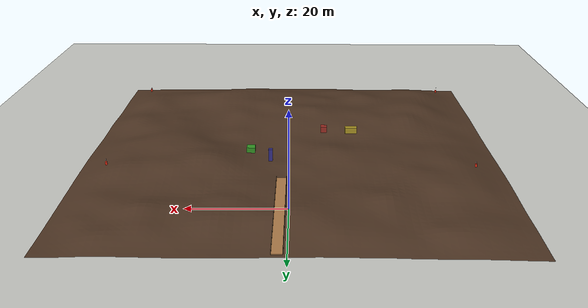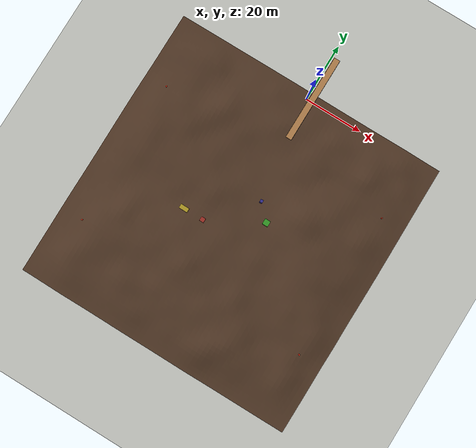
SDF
<sdf version="1.6">
 <world name="level5">
  <plugin filename="gz-sim-physics-system" name="gz::sim::systems::Physics"/>
  <plugin filename="gz-sim-sensors-system" name="gz::sim::systems::Sensors">
   <render_engine>ogre2</render_engine>
   <background_color>0.8 0.8 0.8</background_color>
  </plugin>
  <plugin filename="gz-sim-scene-broadcaster-system" name="gz::sim::systems::SceneBroadcaster"/>
  <plugin filename="gz-sim-user-commands-system" name="gz::sim::systems::UserCommands"/>
  <plugin filename="gz-sim-imu-system" name="gz::sim::systems::Imu"/>
  <plugin filename="gz-sim-navsat-system" name="gz::sim::systems::NavSat"/>
  <spherical_coordinates>
   <surface_model>EARTH_WGS84</surface_model>
   <world_frame_orientation>ENU</world_frame_orientation>
   <latitude_deg>40.595009</latitude_deg>
   <longitude_deg>-79.99974</longitude_deg>
   <elevation>0</elevation>
   <heading_deg>180</heading_deg>
  </spherical_coordinates>
  <scene><ambient>1.0 1.0 1.0</ambient><background>0.8 0.8 0.8</background></scene>
  <light type="directional" name="sun">
   <pose>0 0 10 0 0 0</pose>
   <diffuse>0.8 0.8 0.8 1</diffuse>
   <specular>0.6 0.6 0.6 1</specular>
   <direction>-0.5 0.1 -0.9</direction>
  </light>
  <include><uri>model://no_waves</uri></include>
  <include><uri>model://ocean_floor</uri><pose>00 -45 -8 0 0 0</pose></include>
  <include><uri>model://dock</uri><name>dock_1</name><pose>1.8 1.2 -.1 0 0 -1.5708</pose></include>
  <include><uri>model://buoy_marker</uri><name>buoy_1</name><pose>-40 -70 0 0 0 0</pose></include>
  <include><uri>model://buoy_marker</uri><name>buoy_2</name><pose>-40 -20 0 0 0 0</pose></include>
  <include><uri>model://buoy_marker</uri><name>buoy_3</name><pose>40 -70 0 0 0 0</pose></include>
  <include><uri>model://buoy_marker</uri><name>buoy_4</name><pose>40 -20 0 0 0 0</pose></include>
  <model name="test_cube_1">
   <static>true</static>
   <pose>-8 -50 -3.2 0 0 0</pose>
   <link name="link">
    <collision name="collision"><geometry><box><size>1.5 1.5 1.5</size></box></geometry></collision>
    <visual name="visual">
     <geometry><box><size>1.5 1.5 1.5</size></box></geometry>
     <material><ambient>0.8 0.2 0.2 1</ambient><diffuse>0.8 0.2 0.2 1</diffuse></material>
    </visual>
   </link>
  </model>
  <model name="test_cube_2">
   <static>true</static>
   <pose>10 -40 -5 0 0 0</pose>
   <link name="link">
    <collision name="collision"><geometry><box><size>2.0 2.0 2.0</size></box></geometry></collision>
    <visual name="visual">
     <geometry><box><size>2.0 2.0 2.0</size></box></geometry>
     <material><ambient>0.2 0.8 0.2 1</ambient><diffuse>0.2 0.8 0.2 1</diffuse></material>
    </visual>
   </link>
  </model>
  <model name="test_cube_3">
   <static>true</static>
   <pose>5 -35 -4 0 0 0</pose>
   <link name="link">
    <collision name="collision"><geometry><box><size>1.0 1.0 3.0</size></box></geometry></collision>
    <visual name="visual">
     <geometry><box><size>1.0 1.0 3.0</size></box></geometry>
     <material><ambient>0.2 0.2 0.8 1</ambient><diffuse>0.2 0.2 0.8 1</diffuse></material>
    </visual>
   </link>
  </model>
  <model name="test_cube_4">
   <static>true</static>
   <pose>-15 -50 -3.5 0 0 0</pose>
   <link name="link">
    <collision name="collision"><geometry><box><size>3.0 1.5 1.5</size></box></geometry></collision>
    <visual name="visual">
     <geometry><box><size>3.0 1.5 1.5</size></box></geometry>
     <material><ambient>0.9 0.8 0.2 1</ambient><diffuse>0.9 0.8 0.2 1</diffuse></material>
    </visual>
   </link>
  </model>
 </world>
</sdf>

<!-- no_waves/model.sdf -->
<sdf version="1.6">
  <model name="waves">
    <static>true</static>

    <plugin
        filename="gz-waves1-waves-model-system"
        name="gz::sim::systems::WavesModel">
      <static>1</static>
      <wave>
        <algorithm>sinusoid</algorithm>
        <tile_size>400</tile_size>
        <cell_count>8</cell_count>
        <amplitude>0</amplitude>
        <period>1</period>
      </wave>
    </plugin>

    <link name="base_link">
      <!--
        Static visual water replaces the dynamic WavesVisual deformation
        pipeline. It preserves the visible water surface without per-frame
        mesh updates.
      -->
      <visual name="visual">
        <cast_shadows>false</cast_shadows>
        <transparency>0</transparency>
        <geometry>
          <plane>
            <normal>0 0 1</normal>
            <size>800 800</size>
          </plane>
        </geometry>
        <material>
          <ambient>0.12 0.08 0.02 1</ambient>
          <diffuse>0.25 0.18 0.06 1</diffuse>
          <specular>0.15 0.12 0.08 1</specular>
          <pbr>
            <metal>
              <albedo_map>materials/water.jpg</albedo_map>
              <normal_map>materials/wave_normals.dds</normal_map>
              <environment_map>materials/skybox_lowres.dds</environment_map>
              <roughness>0.3</roughness>
              <metalness>0.1</metalness>
            </metal>
          </pbr>
        </material>
      </visual>
    </link>
  </model>
</sdf>

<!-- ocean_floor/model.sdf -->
<sdf version="1.9">
  <model name="ocean_floor">

    <static>true</static>

    <!-- Original floor -->
    <link name="terrain_link">

      <visual name="terrain_visual">
        <cast_shadows>false</cast_shadows>
        <geometry>
          <mesh>
            <uri>model://ocean_floor/meshes/ocean_floor.obj</uri>
          </mesh>
        </geometry>
        <material>
            <ambient>0.8 0.2 0.2 1</ambient>
            <diffuse>0.360 0.250 0.200 1</diffuse>
        </material>
      </visual>
    </link>
  </model>
</sdf>

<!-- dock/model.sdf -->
<sdf version="1.7">
  <model name="dock">
    <static>true</static>

    <link name="dock_link">

      <!-- MAIN PLATFORM -->
      <collision name="platform_collision">
        <pose>0 0 0.1 0 0 0</pose>
        <geometry>
          <box>
            <size>30 2 0.2</size>
          </box>
        </geometry>
      </collision>

      <visual name="platform_visual">
        <pose>0 0 0.1 0 0 0</pose>
        <geometry>
          <box>
            <size>30 2 0.2</size>
          </box>
        </geometry>
        <material>
            <script>
                <uri>model://dock/materials/scripts</uri>
                <uri>model://dock/materials/textures</uri>
                <name>Dock/Wood</name>
            </script>
        </material>
      </visual>

      <!-- LEFT EDGE -->
      <collision name="left_edge_collision">
        <pose>0 -1.05 0.3 0 0 0</pose>
        <geometry>
          <box>
            <size>30 0.1 0.4</size>
          </box>
        </geometry>
      </collision>

      <visual name="left_edge_visual">
        <pose>0 -1.05 0.3 0 0 0</pose>
        <geometry>
          <box>
            <size>30 0.1 0.4</size>
          </box>
        </geometry>
        <material>
          <ambient>0.3 0.2 0.1 1</ambient>
          <diffuse>0.4 0.3 0.2 1</diffuse>
        </material>
      </visual>

      <!-- RIGHT EDGE -->
      <collision name="right_edge_collision">
        <pose>0 1.05 0.3 0 0 0</pose>
        <geometry>
          <box>
            <size>30 0.1 0.4</size>
          </box>
        </geometry>
      </collision>

      <visual name="right_edge_visual">
        <pose>0 1.05 0.3 0 0 0</pose>
        <geometry>
          <box>
            <size>30 0.1 0.4</size>
          </box>
        </geometry>
        <material>
          <ambient>0.3 0.2 0.1 1</ambient>
          <diffuse>0.4 0.3 0.2 1</diffuse>
        </material>
      </visual>

    </link>
  </model>
</sdf>

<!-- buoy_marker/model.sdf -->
<sdf version="1.9">
  <model name="buoy_marker">
    <static>true</static>

    <link name="base_link">
      <!-- Keep collision tiny so it doesn't matter physically -->
      <collision name="collision">
        <geometry>
          <cylinder>
            <radius>0.18</radius>
            <length>1.2</length>
          </cylinder>
        </geometry>
      </collision>

      <visual name="float_visual">
        <pose>0 0 0.35 0 0 0</pose>
        <geometry>
          <cylinder>
            <radius>0.22</radius>
            <length>0.7</length>
          </cylinder>
        </geometry>
        <material>
          <ambient>1.0 0.2 0.1 1.0</ambient>
          <diffuse>1.0 0.2 0.1 1.0</diffuse>
        </material>
      </visual>

      <visual name="mast_visual">
        <pose>0 0 1.0 0 0 0</pose>
        <geometry>
          <cylinder>
            <radius>0.03</radius>
            <length>0.8</length>
          </cylinder>
        </geometry>
        <material>
          <ambient>0.9 0.9 0.9 1.0</ambient>
          <diffuse>0.9 0.9 0.9 1.0</diffuse>
        </material>
      </visual>
    </link>
  </model>
</sdf>
